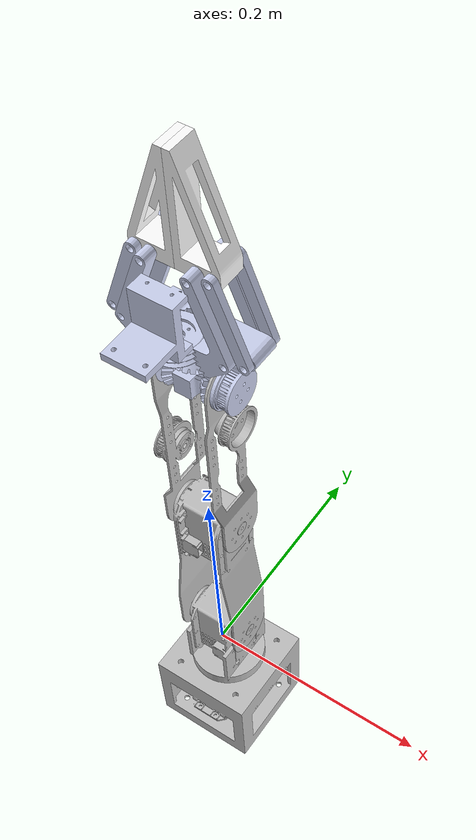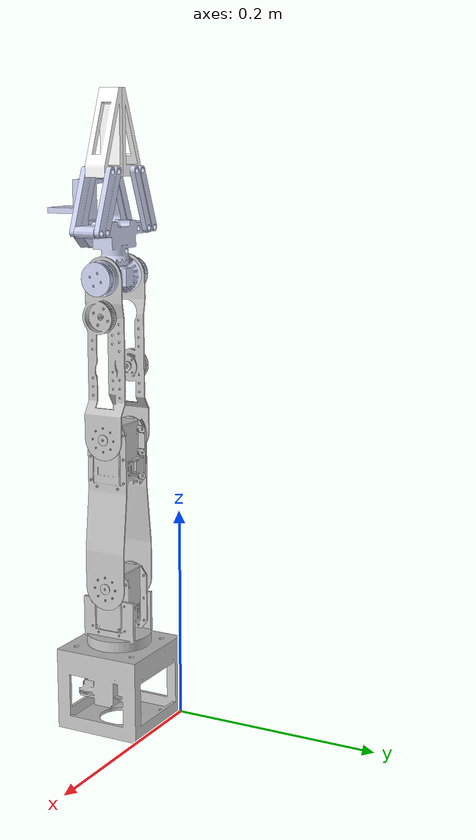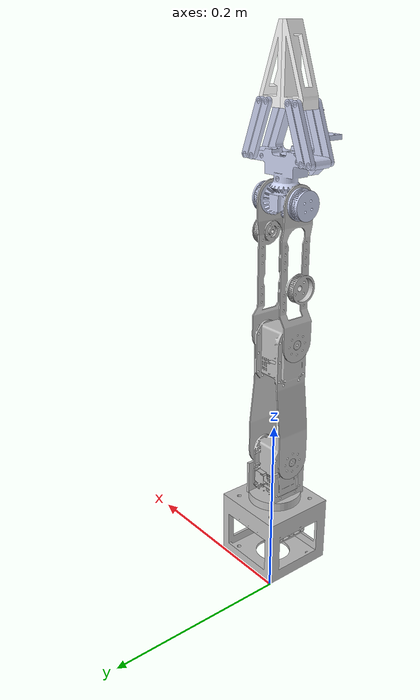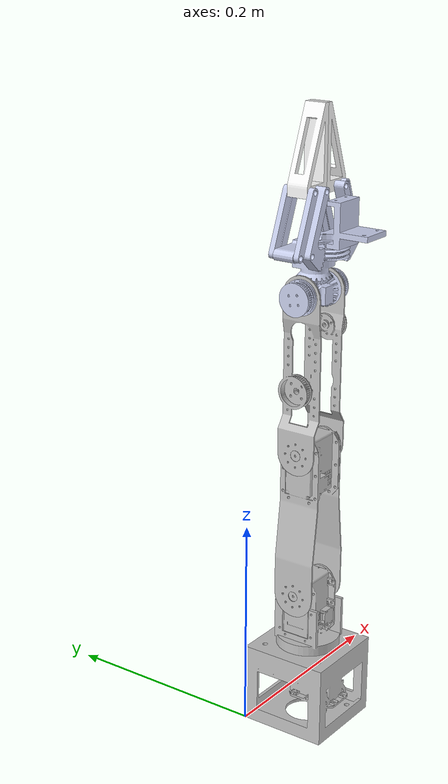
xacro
<?xml version="1.0"?>
<robot xmlns:xacro="http://www.ros.org/wiki/xacro" name="arm_robot_description">
    <xacro:arg name="initial_positions_file" default="initial_positions.yaml" />

    <!-- Import arm_robot_description urdf file -->
    <xacro:include filename="$(find arm_robot_description)/urdf/arm_robot_description.urdf" />

    <!-- Import control_xacro -->
    <xacro:include filename="arm_robot_description.ros2_control.xacro" />

    <xacro:arm_robot_description_ros2_control name="FakeSystem" initial_positions_file="$(arg initial_positions_file)"/>

</robot>

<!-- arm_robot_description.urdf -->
<robot
  name="arm_robot_description">
  <link
    name="base_link">
    <visual>
      <origin
        xyz="0 0 0"
        rpy="0 0 0" />
      <geometry>
        <mesh
          filename="package://arm_robot_description/meshes/base_link.STL" />
      </geometry>
      <material
        name="">
        <color
          rgba="0.752941176470588 0.752941176470588 0.752941176470588 1" />
      </material>
    </visual>
    <collision>
      <origin
        xyz="0 0 0"
        rpy="0 0 0" />
      <geometry>
        <mesh
          filename="package://arm_robot_description/meshes/base_link.STL" />
      </geometry>
    </collision>
  </link>
  <link
    name="shoulder_link">
    <inertial>
      <origin
        xyz="0.000963679642365663 0.0577904979483488 -9.50062831804183E-05"
        rpy="0 0 0" />
      <mass
        value="0.0937952908137171" />
      <inertia
        ixx="2.94163203677392E-05"
        ixy="-4.78216785521403E-07"
        ixz="-9.68291794152728E-08"
        iyy="2.60092518486733E-05"
        iyz="-1.13045243628439E-08"
        izz="3.10075174738564E-05" />
    </inertial>
    <visual>
      <origin
        xyz="0 0 0"
        rpy="0 0 0" />
      <geometry>
        <mesh
          filename="package://arm_robot_description/meshes/shoulder_link.STL" />
      </geometry>
      <material
        name="">
        <color
          rgba="0.752941176470588 0.752941176470588 0.752941176470588 1" />
      </material>
    </visual>
    <collision>
      <origin
        xyz="0 0 0"
        rpy="0 0 0" />
      <geometry>
        <mesh
          filename="package://arm_robot_description/meshes/shoulder_link.STL" />
      </geometry>
    </collision>
  </link>
  <joint
    name="shoulder_joint"
    type="revolute">
    <origin
      xyz="0.042 -0.042 0.052082"
      rpy="1.570796327 0 -3.1415926536" />
    <parent
      link="base_link" />
    <child
      link="shoulder_link" />
    <axis
      xyz="0 1 0" />
    <limit
      lower="-3.1415926536"
      upper="3.1415926536"
      effort="0"
      velocity="0" />
  </joint>
  <link
    name="upperarm_link">
    <inertial>
      <origin
        xyz="0.0393296521650432 -0.0955117843738581 3.5171956702662E-07"
        rpy="0 0 0" />
      <mass
        value="0.106266316809038" />
      <inertia
        ixx="9.43010109053496E-05"
        ixy="-5.069300878039E-07"
        ixz="4.25324654345257E-11"
        iyy="2.01302460392975E-05"
        iyz="1.88515951791571E-13"
        izz="9.21413861518418E-05" />
    </inertial>
    <visual>
      <origin
        xyz="0 0 0"
        rpy="0 0 0" />
      <geometry>
        <mesh
          filename="package://arm_robot_description/meshes/upperarm_link.STL" />
      </geometry>
      <material
        name="">
        <color
          rgba="0.752941176470588 0.752941176470588 0.752941176470588 1" />
      </material>
    </visual>
    <collision>
      <origin
        xyz="0 0 0"
        rpy="0 0 0" />
      <geometry>
        <mesh
          filename="package://arm_robot_description/meshes/upperarm_link.STL" />
      </geometry>
    </collision>
  </link>
  <joint
    name="upperarm_joint"
    type="revolute">
    <origin
      xyz="-0.036613 0.084019 0"
      rpy="3.1415926536 0 0" />
    <parent
      link="shoulder_link" />
    <child
      link="upperarm_link" />
    <axis
      xyz="1 0 0" />
    <limit
      lower="-1.570796327"
      upper="1.570796327"
      effort="0"
      velocity="0" />
  </joint>
  <link
    name="forearm_link">
    <inertial>
      <origin
        xyz="-0.00379914392129819 -0.0675895141224325 1.11022302462516E-16"
        rpy="0 0 0" />
      <mass
        value="0.0738289635729949" />
      <inertia
        ixx="0.000101606244132764"
        ixy="2.11583914183042E-22"
        ixz="-1.86726194029619E-12"
        iyy="8.93040327450558E-06"
        iyz="-3.01427046942224E-19"
        izz="9.41733072382026E-05" />
    </inertial>
    <visual>
      <origin
        xyz="0 0 0"
        rpy="0 0 0" />
      <geometry>
        <mesh
          filename="package://arm_robot_description/meshes/forearm_link.STL" />
      </geometry>
      <material
        name="">
        <color
          rgba="0.752941176470588 0.752941176470588 0.752941176470588 1" />
      </material>
    </visual>
    <collision>
      <origin
        xyz="0 0 0"
        rpy="0 0 0" />
      <geometry>
        <mesh
          filename="package://arm_robot_description/meshes/forearm_link.STL" />
      </geometry>
    </collision>
  </link>
  <joint
    name="forearm_joint"
    type="revolute">
    <origin
      xyz="0.035651 -0.14 0"
      rpy="3.1415926536 0 3.1415926536" />
    <parent
      link="upperarm_link" />
    <child
      link="forearm_link" />
    <axis
      xyz="1 0 0" />
    <limit
      lower="-1.570796327"
      upper="1.570796327"
      effort="0"
      velocity="0" />
  </joint>
  <link
    name="wrist_link">
    <inertial>
      <origin
        xyz="-5.9548301278578E-05 0.0309219607518911 -3.52055394473028E-05"
        rpy="0 0 0" />
      <mass
        value="0.0312687952088218" />
      <inertia
        ixx="2.36442877114977E-06"
        ixy="-2.65552878745857E-09"
        ixz="-2.24830540296741E-07"
        iyy="3.26245065540287E-06"
        iyz="4.49109404910189E-09"
        izz="2.53633915404046E-06" />
    </inertial>
    <visual>
      <origin
        xyz="0 0 0"
        rpy="0 0 0" />
      <geometry>
        <mesh
          filename="package://arm_robot_description/meshes/wrist_link.STL" />
      </geometry>
      <material
        name="">
        <color
          rgba="0.792156862745098 0.819607843137255 0.933333333333333 1" />
      </material>
    </visual>
    <collision>
      <origin
        xyz="0 0 0"
        rpy="0 0 0" />
      <geometry>
        <mesh
          filename="package://arm_robot_description/meshes/wrist_link.STL" />
      </geometry>
    </collision>
  </link>
  <joint
    name="wrist_joint"
    type="revolute">
    <origin
      xyz="-0.035049 -0.145 0"
      rpy="0 -0.96942 -1.570796327" />
    <parent
      link="forearm_link" />
    <child
      link="wrist_link" />
    <axis
      xyz="0 -1 0" />
    <limit
      lower="-1.6"
      upper="1.6"
      effort="0"
      velocity="0" />
  </joint>
  <link
    name="frame_link">
    <inertial>
      <origin
        xyz="0.00423615580807838 0.00251757352994463 0.037073257530931"
        rpy="0 0 0" />
      <mass
        value="0.0971603253782602" />
      <inertia
        ixx="3.61475773412502E-05"
        ixy="1.3650130640794E-05"
        ixz="7.26831148623548E-07"
        iyy="2.03809535466644E-05"
        iyz="4.18500158510254E-07"
        izz="4.68109199288427E-05" />
    </inertial>
    <visual>
      <origin
        xyz="0 0 0"
        rpy="0 0 0" />
      <geometry>
        <mesh
          filename="package://arm_robot_description/meshes/frame_link.STL" />
      </geometry>
      <material
        name="">
        <color
          rgba="0.792156862745098 0.819607843137255 0.933333333333333 1" />
      </material>
    </visual>
    <collision>
      <origin
        xyz="0 0 0"
        rpy="0 0 0" />
      <geometry>
        <mesh
          filename="package://arm_robot_description/meshes/frame_link.STL" />
      </geometry>
    </collision>
  </link>
  <joint
    name="frame_joint"
    type="revolute">
    <origin
      xyz="0.0036775 0.03125 -0.0053596"
      rpy="-2.8111 0.51206 -2.5307" />
    <parent
      link="wrist_link" />
    <child
      link="frame_link" />
    <axis
      xyz="0 0 1" />
    <limit
      lower="-3.1415926536"
      upper="3.1415926536"
      effort="0"
      velocity="0" />
  </joint>
  <link
    name="worm_link">
    <inertial>
      <origin
        xyz="0.000260518944933091 0.000117382605098179 0.00451004543272632"
        rpy="0 0 0" />
      <mass
        value="0.00449816970666781" />
      <inertia
        ixx="4.14594786131159E-07"
        ixy="1.40083855679959E-10"
        ixz="-2.46228289212281E-10"
        iyy="4.1416094521697E-07"
        iyz="-1.00268234450091E-09"
        izz="7.65193389522088E-07" />
    </inertial>
    <visual>
      <origin
        xyz="0 0 0"
        rpy="0 0 0" />
      <geometry>
        <mesh
          filename="package://arm_robot_description/meshes/worm_link.STL" />
      </geometry>
      <material
        name="">
        <color
          rgba="0.792156862745098 0.819607843137255 0.933333333333333 1" />
      </material>
    </visual>
    <collision>
      <origin
        xyz="0 0 0"
        rpy="0 0 0" />
      <geometry>
        <mesh
          filename="package://arm_robot_description/meshes/worm_link.STL" />
      </geometry>
    </collision>
  </link>
  <joint
    name="worm_joint"
    type="revolute">
    <origin
      xyz="0.01299 0.0075 0.038"
      rpy="3.1415926536 0 -3.0183" />
    <parent
      link="frame_link" />
    <child
      link="worm_link" />
    <axis
      xyz="0 0 1" />
    <limit
      lower="0"
      upper="3.1415926536"
      effort="0"
      velocity="0" />
  </joint>
  <link
    name="camera_link">
    <inertial>
      <origin
        xyz="-5.1064E-05 0.021054 0.0043102"
        rpy="0 0 0" />
      <mass
        value="0.06" />
      <inertia
        ixx="6.3369E-06"
        ixy="-1.7614E-10"
        ixz="-1.0223E-09"
        iyy="6.3143E-06"
        iyz="-2.0617E-09"
        izz="1.1586E-05" />
    </inertial>
  </link>
  <joint
    name="camera_joint"
    type="fixed">
    <origin
      xyz="0.028329 0.016933 0.06075"
      rpy="-1.5707963268 -1.5707963268 -1.0472" /> <!-- This reorients the camera AND pointcloud -->
    <parent
      link="frame_link" />
    <child
      link="camera_link" />
    <axis
      xyz="0 0 0" />
  </joint>
  <link
    name="left_inner_link">
    <inertial>
      <origin
        xyz="0.00295374681981073 -0.00172924903482494 -0.0202562653029812"
        rpy="0 0 0" />
      <mass
        value="0.00921636410970939" />
      <inertia
        ixx="3.15977166254403E-06"
        ixy="8.94327155107839E-11"
        ixz="-4.83078423739066E-07"
        iyy="3.37677241931955E-06"
        iyz="1.24222051728893E-10"
        izz="3.4311273454431E-07" />
    </inertial>
    <visual>
      <origin
        xyz="0 0 0"
        rpy="0 0 0" />
      <geometry>
        <mesh
          filename="package://arm_robot_description/meshes/left_inner_link.STL" />
      </geometry>
      <material
        name="">
        <color
          rgba="0.792156862745098 0.819607843137255 0.933333333333333 1" />
      </material>
    </visual>
    <collision>
      <origin
        xyz="0 0 0"
        rpy="0 0 0" />
      <geometry>
        <mesh
          filename="package://arm_robot_description/meshes/left_inner_link.STL" />
      </geometry>
    </collision>
  </link>
  <joint
    name="left_inner_joint"
    type="revolute">
    <origin
      xyz="0.02616 -0.025311 0.035"
      rpy="3.1415926536 0.37217 2.0944" />
    <parent
      link="frame_link" />
    <child
      link="left_inner_link" />
    <axis
      xyz="0 1 0" />
    <limit
      lower="0"
      upper="0.6"
      effort="0"
      velocity="0" />
    <mimic
      joint="worm_joint"
      multiplier="0.190991564"
      offset="0" />
  </joint>
  <link
    name="left_finger_link">
    <inertial>
      <origin
        xyz="0.00511565604680594 0.0100000000000003 -0.0244249931550103"
        rpy="0 0 0" />
      <mass
        value="0.0160596004014874" />
      <inertia
        ixx="9.38451157380704E-06"
        ixy="-3.43741641172726E-21"
        ixz="1.54039618799638E-06"
        iyy="1.0073020861505E-05"
        iyz="8.98402572391069E-21"
        izz="1.87995862434743E-06" />
    </inertial>
    <visual>
      <origin
        xyz="0 0 0"
        rpy="0 0 0" />
      <geometry>
        <mesh
          filename="package://arm_robot_description/meshes/left_finger_link.STL" />
      </geometry>
      <material
        name="">
        <color
          rgba="1 1 1 1" />
      </material>
    </visual>
    <collision>
      <origin
        xyz="0 0 0"
        rpy="0 0 0" />
      <geometry>
        <mesh
          filename="package://arm_robot_description/meshes/left_finger_link.STL" />
      </geometry>
    </collision>
  </link>
  <joint
    name="left_finger_joint"
    type="revolute">
    <origin
      xyz="0 -0.02 -0.055"
      rpy="0 0.37217 0" />
    <parent
      link="left_inner_link" />
    <child
      link="left_finger_link" />
    <axis
      xyz="0 1 0" />
    <limit
      lower="-0.6"
      upper="0"
      effort="0"
      velocity="0" />
    <mimic
      joint="left_inner_joint"
      multiplier="-1"
      offset="0" />
  </joint>
  <link
    name="right_inner_link">
    <inertial>
      <origin
        xyz="0.00295374681981056 0.0117276610278346 -0.0202562653029817"
        rpy="0 0 0" />
      <mass
        value="0.00921636410970938" />
      <inertia
        ixx="3.15977166254403E-06"
        ixy="8.94327155090331E-11"
        ixz="-4.83078423739054E-07"
        iyy="3.37677241931954E-06"
        iyz="1.24222051731463E-10"
        izz="3.43112734544309E-07" />
    </inertial>
    <visual>
      <origin
        xyz="0 0 0"
        rpy="0 0 0" />
      <geometry>
        <mesh
          filename="package://arm_robot_description/meshes/right_inner_link.STL" />
      </geometry>
      <material
        name="">
        <color
          rgba="0.792156862745098 0.819607843137255 0.933333333333333 1" />
      </material>
    </visual>
    <collision>
      <origin
        xyz="0 0 0"
        rpy="0 0 0" />
      <geometry>
        <mesh
          filename="package://arm_robot_description/meshes/right_inner_link.STL" />
      </geometry>
    </collision>
  </link>
  <joint
    name="right_inner_joint"
    type="revolute">
    <origin
      xyz="-0.00017949 0.040311 0.035"
      rpy="3.1415926536 0.37217 -1.0472" />
    <parent
      link="frame_link" />
    <child
      link="right_inner_link" />
    <axis
      xyz="0 -1 0" />
    <limit
      lower="-0.6"
      upper="0"
      effort="0"
      velocity="0" />
    <mimic
      joint="worm_joint"
      multiplier="-0.190991564"
      offset="0" />
  </joint>
  <link
    name="right_finger_link">
    <inertial>
      <origin
        xyz="0.00511565604680823 0.00999999999999974 -0.0244249931550099"
        rpy="0 0 0" />
      <mass
        value="0.0160596004014874" />
      <inertia
        ixx="9.38451157380674E-06"
        ixy="-3.65454764450331E-21"
        ixz="1.54039618799715E-06"
        iyy="1.0073020861505E-05"
        iyz="7.47838052557991E-21"
        izz="1.87995862434775E-06" />
    </inertial>
    <visual>
      <origin
        xyz="0 0 0"
        rpy="0 0 0" />
      <geometry>
        <mesh
          filename="package://arm_robot_description/meshes/right_finger_link.STL" />
      </geometry>
      <material
        name="">
        <color
          rgba="1 1 1 1" />
      </material>
    </visual>
    <collision>
      <origin
        xyz="0 0 0"
        rpy="0 0 0" />
      <geometry>
        <mesh
          filename="package://arm_robot_description/meshes/right_finger_link.STL" />
      </geometry>
    </collision>
  </link>
  <joint
    name="right_finger_joint"
    type="revolute">
    <origin
      xyz="0 0.01 -0.055"
      rpy="0 0.37217 0" />
    <parent
      link="right_inner_link" />
    <child
      link="right_finger_link" />
    <axis
      xyz="0 1 0" />
    <limit
      lower="-0.6"
      upper="0"
      effort="0"
      velocity="0" />
    <mimic
      joint="right_inner_joint"
      multiplier="1"
      offset="0" />
  </joint>
  <link
    name="left_outer_link">
    <inertial>
      <origin
        xyz="1.11022302462516E-16 -0.00999999999999943 -0.0274999999999999"
        rpy="0 0 0" />
      <mass
        value="0.00450995574287564" />
      <inertia
        ixx="1.25004679866384E-06"
        ixy="8.80640842801115E-24"
        ixz="-3.18299099710405E-21"
        iyy="1.26551475118266E-06"
        iyz="4.5157491829455E-22"
        izz="3.42594347808008E-08" />
    </inertial>
    <visual>
      <origin
        xyz="0 0 0"
        rpy="0 0 0" />
      <geometry>
        <mesh
          filename="package://arm_robot_description/meshes/left_outer_link.STL" />
      </geometry>
      <material
        name="">
        <color
          rgba="0.792156862745098 0.819607843137255 0.933333333333333 1" />
      </material>
    </visual>
    <collision>
      <origin
        xyz="0 0 0"
        rpy="0 0 0" />
      <geometry>
        <mesh
          filename="package://arm_robot_description/meshes/left_outer_link.STL" />
      </geometry>
    </collision>
  </link>
  <joint
    name="left_outer_joint"
    type="revolute">
    <origin
      xyz="0.03116 -0.033971 0.035"
      rpy="3.1415926536 0.37217 2.0944" />
    <parent
      link="frame_link" />
    <child
      link="left_outer_link" />
    <axis
      xyz="0 1 0" />
    <limit
      lower="0"
      upper="0.6"
      effort="0"
      velocity="0" />
    <mimic
      joint="left_inner_joint"
      multiplier="1"
      offset="0" />
  </joint>
  <link
    name="right_outer_link">
    <inertial>
      <origin
        xyz="2.77555756156289E-17 0.015 -0.0275"
        rpy="0 0 0" />
      <mass
        value="0.00450995574287564" />
      <inertia
        ixx="1.25004679866384E-06"
        ixy="-8.75366721974071E-24"
        ixz="-1.1059404789834E-21"
        iyy="1.26551475118266E-06"
        iyz="-5.0099741919037E-22"
        izz="3.42594347808009E-08" />
    </inertial>
    <visual>
      <origin
        xyz="0 0 0"
        rpy="0 0 0" />
      <geometry>
        <mesh
          filename="package://arm_robot_description/meshes/right_outer_link.STL" />
      </geometry>
      <material
        name="">
        <color
          rgba="0.792156862745098 0.819607843137255 0.933333333333333 1" />
      </material>
    </visual>
    <collision>
      <origin
        xyz="0 0 0"
        rpy="0 0 0" />
      <geometry>
        <mesh
          filename="package://arm_robot_description/meshes/right_outer_link.STL" />
      </geometry>
    </collision>
  </link>
  <joint
    name="right_outer_joint"
    type="revolute">
    <origin
      xyz="-0.0095096 0.046471 0.035"
      rpy="3.1415926536 0.37217 -1.0472" />
    <parent
      link="frame_link" />
    <child
      link="right_outer_link" />
    <axis
      xyz="0 -1 0" />
    <limit
      lower="-0.6"
      upper="0"
      effort="0"
      velocity="0" />
    <mimic
      joint="right_inner_joint"
      multiplier="1"
      offset="0" />
  </joint>
</robot>
